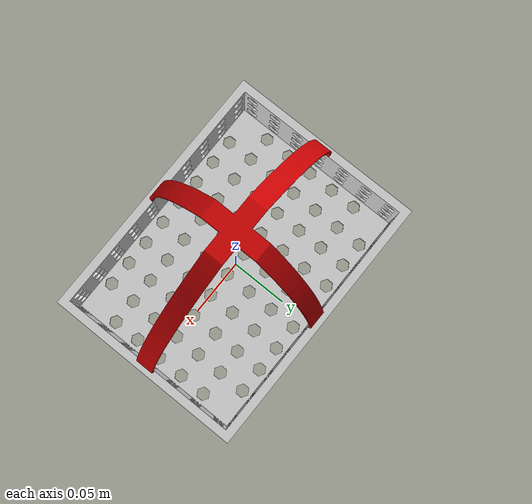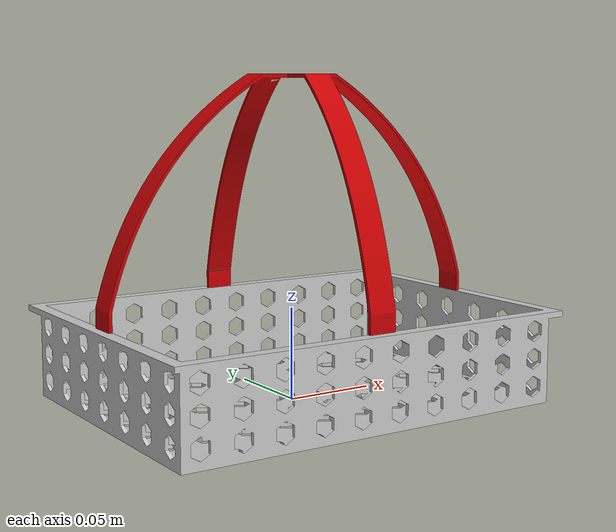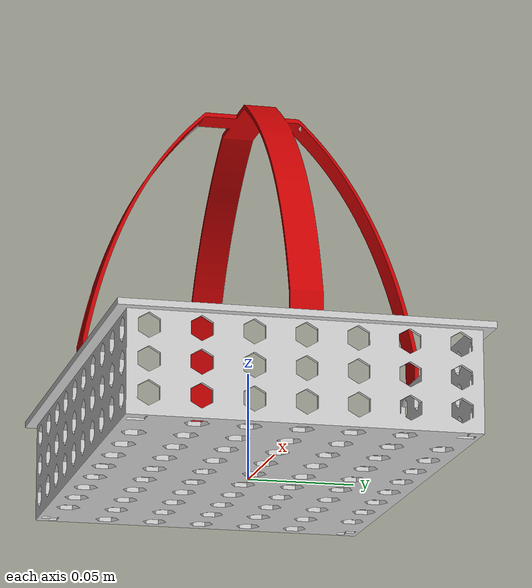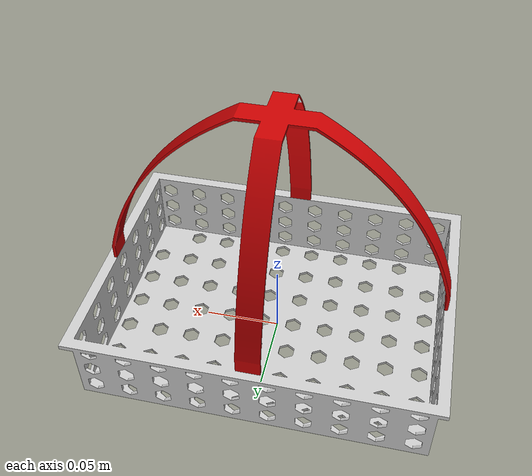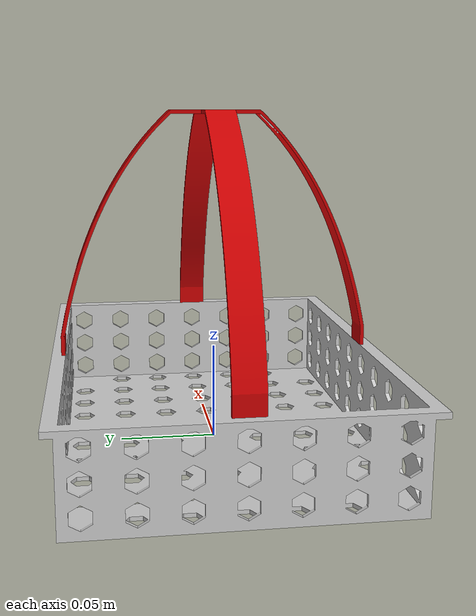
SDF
<?xml version="1.0" ?>
<sdf version="1.9">
  <model name="composite_model">
    <static>false</static>

    <!-- Single link for collision + visuals -->
    <link name="main_link">
      <pose>0 0 0 0 0 0</pose>

      <!-- Bottom Visual -->
      <visual name="bottom_visual">
        <geometry>
          <mesh>
            <uri>model://box/meshes/bottom_part.dae</uri>
            <scale>0.001 0.001 0.001</scale> <!-- mm to meters -->
          </mesh>
        </geometry>
      </visual>

      <!-- Top Visual -->
      <visual name="top_visual">
        <geometry>
          <mesh>
            <uri>model://box/meshes/top_part.dae</uri>
            <scale>0.001 0.001 0.001</scale>
          </mesh>
        </geometry>
      </visual>

      <!-- Single collision mesh -->
	</link>
  </model>
</sdf>
